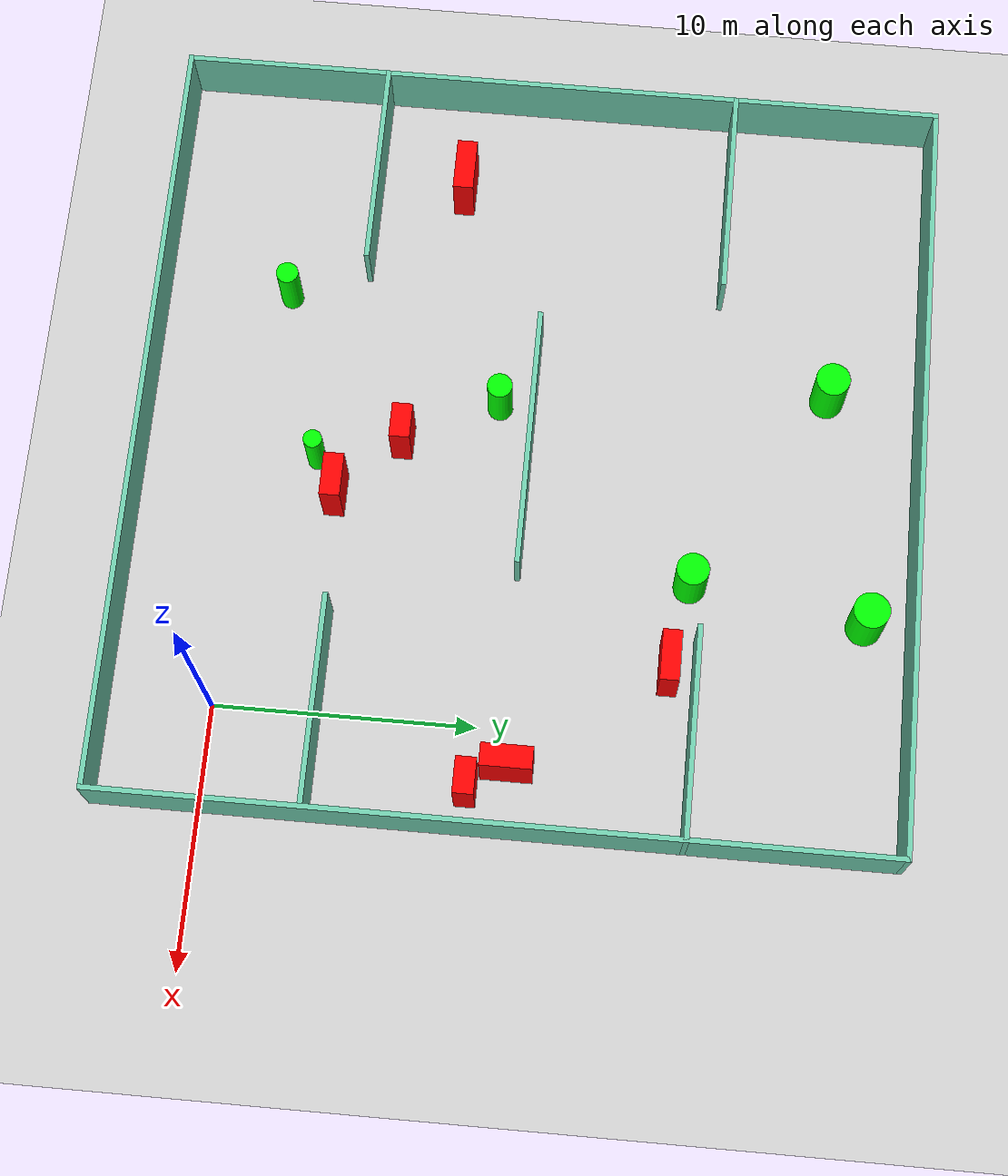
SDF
<sdf version="1.7">
 <world name="default">
  <light name="sun" type="directional">
   <pose>0 0 10 0 -0 0</pose>
   <diffuse>0.8 0.8 0.8 1</diffuse>
   <specular>0.2 0.2 0.2 1</specular>
   <attenuation>
    <range>1000</range>
    <constant>0.9</constant>
    <linear>0.01</linear>
    <quadratic>0.001</quadratic>
   </attenuation>
   <direction>-0.5 0.1 -0.9</direction>
   <spot><inner_angle>0</inner_angle><outer_angle>0</outer_angle><falloff>0</falloff></spot>
  </light>
  <model name="ground_plane">
   <static>1</static>
   <link name="link">
    <collision name="collision">
     <geometry><plane><normal>0 0 1</normal><size>100 100</size></plane></geometry>
     <surface>
      <contact><collide_bitmask>65535</collide_bitmask></contact>
      <friction><ode><mu>100</mu><mu2>50</mu2></ode></friction>
     </surface>
    </collision>
    <visual name="visual">
     <cast_shadows>0</cast_shadows>
     <geometry><plane><normal>0 0 1</normal><size>100 100</size></plane></geometry>
     <material>
      <script><uri>file://media/materials/scripts/gazebo.material</uri><name>Gazebo/Grey</name></script>
     </material>
    </visual>
   </link>
  </model>
  <gravity>0 0 -9.8</gravity>
  <magnetic_field>6e-06 2.3e-05 -4.2e-05</magnetic_field>
  <atmosphere type="adiabatic"/>
  <physics type="ode">
   <max_step_size>0.001</max_step_size>
   <real_time_factor>1</real_time_factor>
   <real_time_update_rate>1000</real_time_update_rate>
  </physics>
  <scene><ambient>0.4 0.4 0.4 1</ambient><background>0.7 0.7 0.7 1</background><shadows>1</shadows></scene>
  <spherical_coordinates>
   <surface_model>EARTH_WGS84</surface_model>
   <latitude_deg>0</latitude_deg>
   <longitude_deg>0</longitude_deg>
   <elevation>0</elevation>
   <heading_deg>0</heading_deg>
  </spherical_coordinates>
  <model name="my_base_walls">
   <link name="Wall_10">
    <collision name="Wall_10_Collision">
     <geometry><box><size>8.2 0.2 2.5</size></box></geometry>
     <pose>0 0 1.25 0 -0 0</pose>
    </collision>
    <visual name="Wall_10_Visual">
     <pose>0 0 1.25 0 -0 0</pose>
     <geometry><box><size>8.2 0.2 2.5</size></box></geometry>
     <material>
      <script><uri>file://media/materials/scripts/gazebo.material</uri><name>Gazebo/Grey</name></script>
      <ambient>0.435294 0.796078 0.67451 1</ambient>
     </material>
     <meta><layer>0</layer></meta>
    </visual>
    <pose>-11 -7 0 0 -0 0</pose>
   </link>
   <link name="Wall_12">
    <collision name="Wall_12_Collision">
     <geometry><box><size>8.2 0.2 2.5</size></box></geometry>
     <pose>0 0 1.25 0 -0 0</pose>
    </collision>
    <visual name="Wall_12_Visual">
     <pose>0 0 1.25 0 -0 0</pose>
     <geometry><box><size>8.2 0.2 2.5</size></box></geometry>
     <material>
      <script><uri>file://media/materials/scripts/gazebo.material</uri><name>Gazebo/Grey</name></script>
      <ambient>0.435294 0.796078 0.67451 1</ambient>
     </material>
     <meta><layer>0</layer></meta>
    </visual>
    <pose>-11 7 0 0 -0 0</pose>
   </link>
   <link name="Wall_14">
    <collision name="Wall_14_Collision">
     <geometry><box><size>8.2 0.2 2.5</size></box></geometry>
     <pose>0 0 1.25 0 -0 0</pose>
    </collision>
    <visual name="Wall_14_Visual">
     <pose>0 0 1.25 0 -0 0</pose>
     <geometry><box><size>8.2 0.2 2.5</size></box></geometry>
     <material>
      <script><uri>file://media/materials/scripts/gazebo.material</uri><name>Gazebo/Grey</name></script>
      <ambient>0.435294 0.796078 0.67451 1</ambient>
     </material>
     <meta><layer>0</layer></meta>
    </visual>
    <pose>11 7 0 0 -0 3.14159</pose>
   </link>
   <link name="Wall_16">
    <collision name="Wall_16_Collision">
     <geometry><box><size>10.2 0.2 2.5</size></box></geometry>
     <pose>0 0 1.25 0 -0 0</pose>
    </collision>
    <visual name="Wall_16_Visual">
     <pose>0 0 1.25 0 -0 0</pose>
     <geometry><box><size>10.2 0.2 2.5</size></box></geometry>
     <material>
      <script><uri>file://media/materials/scripts/gazebo.material</uri><name>Gazebo/Grey</name></script>
      <ambient>0.435294 0.796078 0.67451 1</ambient>
     </material>
     <meta><layer>0</layer></meta>
    </visual>
    <pose>0 0 0 0 -0 3.14159</pose>
   </link>
   <link name="Wall_2">
    <collision name="Wall_2_Collision">
     <geometry><box><size>30.2 0.2 2.5</size></box></geometry>
     <pose>0 0 1.25 0 -0 0</pose>
    </collision>
    <visual name="Wall_2_Visual">
     <pose>0 0 1.25 0 -0 0</pose>
     <geometry><box><size>30.2 0.2 2.5</size></box></geometry>
     <material>
      <script><uri>file://media/materials/scripts/gazebo.material</uri><name>Gazebo/Grey</name></script>
      <ambient>0.435294 0.796078 0.67451 1</ambient>
     </material>
     <meta><layer>0</layer></meta>
    </visual>
    <pose>0 -15 0 0 -0 3.14159</pose>
   </link>
   <link name="Wall_3">
    <collision name="Wall_3_Collision">
     <geometry><box><size>30.2 0.2 2.5</size></box></geometry>
     <pose>0 0 1.25 0 -0 0</pose>
    </collision>
    <visual name="Wall_3_Visual">
     <pose>0 0 1.25 0 -0 0</pose>
     <geometry><box><size>30.2 0.2 2.5</size></box></geometry>
     <material>
      <script><uri>file://media/materials/scripts/gazebo.material</uri><name>Gazebo/Grey</name></script>
      <ambient>0.435294 0.796078 0.67451 1</ambient>
     </material>
     <meta><layer>0</layer></meta>
    </visual>
    <pose>-15 0 0 0 -0 1.5708</pose>
   </link>
   <link name="Wall_4">
    <collision name="Wall_4_Collision">
     <geometry><box><size>30.2 0.2 2.5</size></box></geometry>
     <pose>0 0 1.25 0 -0 0</pose>
    </collision>
    <visual name="Wall_4_Visual">
     <pose>0 0 1.25 0 -0 0</pose>
     <geometry><box><size>30.2 0.2 2.5</size></box></geometry>
     <material>
      <script><uri>file://media/materials/scripts/gazebo.material</uri><name>Gazebo/Grey</name></script>
      <ambient>0.435294 0.796078 0.67451 1</ambient>
     </material>
     <meta><layer>0</layer></meta>
    </visual>
    <pose>0 15 0 0 -0 0</pose>
   </link>
   <link name="Wall_6">
    <collision name="Wall_6_Collision">
     <geometry><box><size>30.2 0.2 2.5</size></box></geometry>
     <pose>0 0 1.25 0 -0 0</pose>
    </collision>
    <visual name="Wall_6_Visual">
     <pose>0 0 1.25 0 -0 0</pose>
     <geometry><box><size>30.2 0.2 2.5</size></box></geometry>
     <material>
      <script><uri>file://media/materials/scripts/gazebo.material</uri><name>Gazebo/Grey</name></script>
      <ambient>0.435294 0.796078 0.67451 1</ambient>
     </material>
     <meta><layer>0</layer></meta>
    </visual>
    <pose>15 0 0 0 -0 1.5708</pose>
   </link>
   <link name="Wall_8">
    <collision name="Wall_8_Collision">
     <geometry><box><size>8.2 0.2 2.5</size></box></geometry>
     <pose>0 0 1.25 0 -0 0</pose>
    </collision>
    <visual name="Wall_8_Visual">
     <pose>0 0 1.25 0 -0 0</pose>
     <geometry><box><size>8.2 0.2 2.5</size></box></geometry>
     <material>
      <script><uri>file://media/materials/scripts/gazebo.material</uri><name>Gazebo/Grey</name></script>
      <ambient>0.435294 0.796078 0.67451 1</ambient>
     </material>
     <meta><layer>0</layer></meta>
    </visual>
    <pose>11 -7 0 0 -0 3.14159</pose>
   </link>
   <static>1</static>
   <pose>-11 11 0 0 -0 0</pose>
  </model>
  <model name="cylinder1">
   <static>1</static>
   <link name="link">
    <inertial>
     <mass>1</mass>
     <inertia><ixx>0.5</ixx><ixy>0</ixy><ixz>0</ixz><iyy>0.5</iyy><iyz>0</iyz><izz>1</izz></inertia>
    </inertial>
    <collision name="collision">
     <geometry><cylinder><radius>0.6603155584723545</radius><length>2.5</length></cylinder></geometry>
    </collision>
    <visual name="visual">
     <geometry><cylinder><radius>0.6603155584723545</radius><length>2.5</length></cylinder></geometry>
     <material>
      <ambient>0 1 0 1</ambient>
      <diffuse>0 1 0 1</diffuse>
      <specular>0.1 0.1 0.1 1</specular>
      <emissive>0 0 0 0</emissive>
     </material>
    </visual>
   </link>
   <pose>-14.285757271617479 22.44905757795152 1.25 0 0 0</pose>
  </model>
  <model name="cylinder2">
   <static>1</static>
   <link name="link">
    <inertial>
     <mass>1</mass>
     <inertia><ixx>0.5</ixx><ixy>0</ixy><ixz>0</ixz><iyy>0.5</iyy><iyz>0</iyz><izz>1</izz></inertia>
    </inertial>
    <collision name="collision">
     <geometry><cylinder><radius>0.3633943373884545</radius><length>2.5</length></cylinder></geometry>
    </collision>
    <visual name="visual">
     <geometry><cylinder><radius>0.3633943373884545</radius><length>2.5</length></cylinder></geometry>
     <material>
      <ambient>0 1 0 1</ambient>
      <diffuse>0 1 0 1</diffuse>
      <specular>0.1 0.1 0.1 1</specular>
      <emissive>0 0 0 0</emissive>
     </material>
    </visual>
   </link>
   <pose>-10.105951640928453 2.79926644390258 1.25 0 0 0</pose>
  </model>
  <model name="cylinder3">
   <static>1</static>
   <link name="link">
    <inertial>
     <mass>1</mass>
     <inertia><ixx>0.5</ixx><ixy>0</ixy><ixz>0</ixz><iyy>0.5</iyy><iyz>0</iyz><izz>1</izz></inertia>
    </inertial>
    <collision name="collision">
     <geometry><cylinder><radius>0.6962725675842584</radius><length>2.5</length></cylinder></geometry>
    </collision>
    <visual name="visual">
     <geometry><cylinder><radius>0.6962725675842584</radius><length>2.5</length></cylinder></geometry>
     <material>
      <ambient>0 1 0 1</ambient>
      <diffuse>0 1 0 1</diffuse>
      <specular>0.1 0.1 0.1 1</specular>
      <emissive>0 0 0 0</emissive>
     </material>
    </visual>
   </link>
   <pose>-5.176995673064164 24.302235290553302 1.25 0 0 0</pose>
  </model>
  <model name="cylinder4">
   <static>1</static>
   <link name="link">
    <inertial>
     <mass>1</mass>
     <inertia><ixx>0.5</ixx><ixy>0</ixy><ixz>0</ixz><iyy>0.5</iyy><iyz>0</iyz><izz>1</izz></inertia>
    </inertial>
    <collision name="collision">
     <geometry><cylinder><radius>0.6270342138110159</radius><length>2.5</length></cylinder></geometry>
    </collision>
    <visual name="visual">
     <geometry><cylinder><radius>0.6270342138110159</radius><length>2.5</length></cylinder></geometry>
     <material>
      <ambient>0 1 0 1</ambient>
      <diffuse>0 1 0 1</diffuse>
      <specular>0.1 0.1 0.1 1</specular>
      <emissive>0 0 0 0</emissive>
     </material>
    </visual>
   </link>
   <pose>-6.197449705609706 17.582928702862 1.25 0 0 0</pose>
  </model>
  <model name="cylinder5">
   <static>1</static>
   <link name="link">
    <inertial>
     <mass>1</mass>
     <inertia><ixx>0.5</ixx><ixy>0</ixy><ixz>0</ixz><iyy>0.5</iyy><iyz>0</iyz><izz>1</izz></inertia>
    </inertial>
    <collision name="collision">
     <geometry><cylinder><radius>0.4303130636264755</radius><length>2.5</length></cylinder></geometry>
    </collision>
    <visual name="visual">
     <geometry><cylinder><radius>0.4303130636264755</radius><length>2.5</length></cylinder></geometry>
     <material>
      <ambient>0 1 0 1</ambient>
      <diffuse>0 1 0 1</diffuse>
      <specular>0.1 0.1 0.1 1</specular>
      <emissive>0 0 0 0</emissive>
     </material>
    </visual>
   </link>
   <pose>-16.892991538845727 1.0032003716475373 1.25 0 0 0</pose>
  </model>
  <model name="cylinder6">
   <static>1</static>
   <link name="link">
    <inertial>
     <mass>1</mass>
     <inertia><ixx>0.5</ixx><ixy>0</ixy><ixz>0</ixz><iyy>0.5</iyy><iyz>0</iyz><izz>1</izz></inertia>
    </inertial>
    <collision name="collision">
     <geometry><cylinder><radius>0.48803203412954843</radius><length>2.5</length></cylinder></geometry>
    </collision>
    <visual name="visual">
     <geometry><cylinder><radius>0.48803203412954843</radius><length>2.5</length></cylinder></geometry>
     <material>
      <ambient>0 1 0 1</ambient>
      <diffuse>0 1 0 1</diffuse>
      <specular>0.1 0.1 0.1 1</specular>
      <emissive>0 0 0 0</emissive>
     </material>
    </visual>
   </link>
   <pose>-12.906573213566698 9.704615492807497 1.25 0 0 0</pose>
  </model>
  <model name="box1">
   <static>1</static>
   <link name="link">
    <inertial>
     <mass>1</mass>
     <inertia><ixx>0.083</ixx><ixy>0</ixy><ixz>0</ixz><iyy>0.083</iyy><iyz>0</iyz><izz>0.083</izz></inertia>
    </inertial>
    <collision name="collision">
     <geometry><box><size>0.8601410758100565 1.9652898319191237 2.5</size></box></geometry>
    </collision>
    <visual name="visual">
     <geometry><box><size>0.8601410758100565 1.9652898319191237 2.5</size></box></geometry>
     <material>
      <ambient>1 0 0 1</ambient>
      <diffuse>1 0 0 1</diffuse>
      <specular>0.1 0.1 0.1 1</specular>
      <emissive>0 0 0 0</emissive>
     </material>
    </visual>
    <sensor name="my_contact" type="contact">
     <contact><collision>box_collision</collision><topic>__default_topic__</topic></contact>
    </sensor>
   </link>
   <pose>1.4972890113883288 11.274469736631955 1.25 0 0 0</pose>
  </model>
  <model name="box2">
   <static>1</static>
   <link name="link">
    <inertial>
     <mass>1</mass>
     <inertia><ixx>0.083</ixx><ixy>0</ixy><ixz>0</ixz><iyy>0.083</iyy><iyz>0</iyz><izz>0.083</izz></inertia>
    </inertial>
    <collision name="collision">
     <geometry><box><size>1.3832261296271704 0.7917127354564912 2.5</size></box></geometry>
    </collision>
    <visual name="visual">
     <geometry><box><size>1.3832261296271704 0.7917127354564912 2.5</size></box></geometry>
     <material>
      <ambient>1 0 0 1</ambient>
      <diffuse>1 0 0 1</diffuse>
      <specular>0.1 0.1 0.1 1</specular>
      <emissive>0 0 0 0</emissive>
     </material>
    </visual>
    <sensor name="my_contact" type="contact">
     <contact><collision>box_collision</collision><topic>__default_topic__</topic></contact>
    </sensor>
   </link>
   <pose>2.339462521867386 9.823669765001897 1.25 0 0 0</pose>
  </model>
  <model name="box3">
   <static>1</static>
   <link name="link">
    <inertial>
     <mass>1</mass>
     <inertia><ixx>0.083</ixx><ixy>0</ixy><ixz>0</ixz><iyy>0.083</iyy><iyz>0</iyz><izz>0.083</izz></inertia>
    </inertial>
    <collision name="collision">
     <geometry><box><size>2.0403190149934267 0.7929209763576306 2.5</size></box></geometry>
    </collision>
    <visual name="visual">
     <geometry><box><size>2.0403190149934267 0.7929209763576306 2.5</size></box></geometry>
     <material>
      <ambient>1 0 0 1</ambient>
      <diffuse>1 0 0 1</diffuse>
      <specular>0.1 0.1 0.1 1</specular>
      <emissive>0 0 0 0</emissive>
     </material>
    </visual>
    <sensor name="my_contact" type="contact">
     <contact><collision>box_collision</collision><topic>__default_topic__</topic></contact>
    </sensor>
   </link>
   <pose>-22.20683217295427 7.469455694456132 1.25 0 0 0</pose>
  </model>
  <model name="box4">
   <static>1</static>
   <link name="link">
    <inertial>
     <mass>1</mass>
     <inertia><ixx>0.083</ixx><ixy>0</ixy><ixz>0</ixz><iyy>0.083</iyy><iyz>0</iyz><izz>0.083</izz></inertia>
    </inertial>
    <collision name="collision">
     <geometry><box><size>1.362168294453187 0.7946459357184386 2.5</size></box></geometry>
    </collision>
    <visual name="visual">
     <geometry><box><size>1.362168294453187 0.7946459357184386 2.5</size></box></geometry>
     <material>
      <ambient>1 0 0 1</ambient>
      <diffuse>1 0 0 1</diffuse>
      <specular>0.1 0.1 0.1 1</specular>
      <emissive>0 0 0 0</emissive>
     </material>
    </visual>
    <sensor name="my_contact" type="contact">
     <contact><collision>box_collision</collision><topic>__default_topic__</topic></contact>
    </sensor>
   </link>
   <pose>-11.168995054088768 6.067318716899763 1.25 0 0 0</pose>
  </model>
  <model name="box5">
   <static>1</static>
   <link name="link">
    <inertial>
     <mass>1</mass>
     <inertia><ixx>0.083</ixx><ixy>0</ixy><ixz>0</ixz><iyy>0.083</iyy><iyz>0</iyz><izz>0.083</izz></inertia>
    </inertial>
    <collision name="collision">
     <geometry><box><size>1.9414888279127505 0.7384153460572969 2.5</size></box></geometry>
    </collision>
    <visual name="visual">
     <geometry><box><size>1.9414888279127505 0.7384153460572969 2.5</size></box></geometry>
     <material>
      <ambient>1 0 0 1</ambient>
      <diffuse>1 0 0 1</diffuse>
      <specular>0.1 0.1 0.1 1</specular>
      <emissive>0 0 0 0</emissive>
     </material>
    </visual>
    <sensor name="my_contact" type="contact">
     <contact><collision>box_collision</collision><topic>__default_topic__</topic></contact>
    </sensor>
   </link>
   <pose>-2.8322976104144715 16.996861668257324 1.25 0 0 0</pose>
  </model>
  <model name="box6">
   <static>1</static>
   <link name="link">
    <inertial>
     <mass>1</mass>
     <inertia><ixx>0.083</ixx><ixy>0</ixy><ixz>0</ixz><iyy>0.083</iyy><iyz>0</iyz><izz>0.083</izz></inertia>
    </inertial>
    <collision name="collision">
     <geometry><box><size>1.6960948542252603 0.7854362863425708 2.5</size></box></geometry>
    </collision>
    <visual name="visual">
     <geometry><box><size>1.6960948542252603 0.7854362863425708 2.5</size></box></geometry>
     <material>
      <ambient>1 0 0 1</ambient>
      <diffuse>1 0 0 1</diffuse>
      <specular>0.1 0.1 0.1 1</specular>
      <emissive>0 0 0 0</emissive>
     </material>
    </visual>
    <sensor name="my_contact" type="contact">
     <contact><collision>box_collision</collision><topic>__default_topic__</topic></contact>
    </sensor>
   </link>
   <pose>-8.76729615615385 3.6853673890830843 1.25 0 0 0</pose>
  </model>
 </world>
</sdf>
